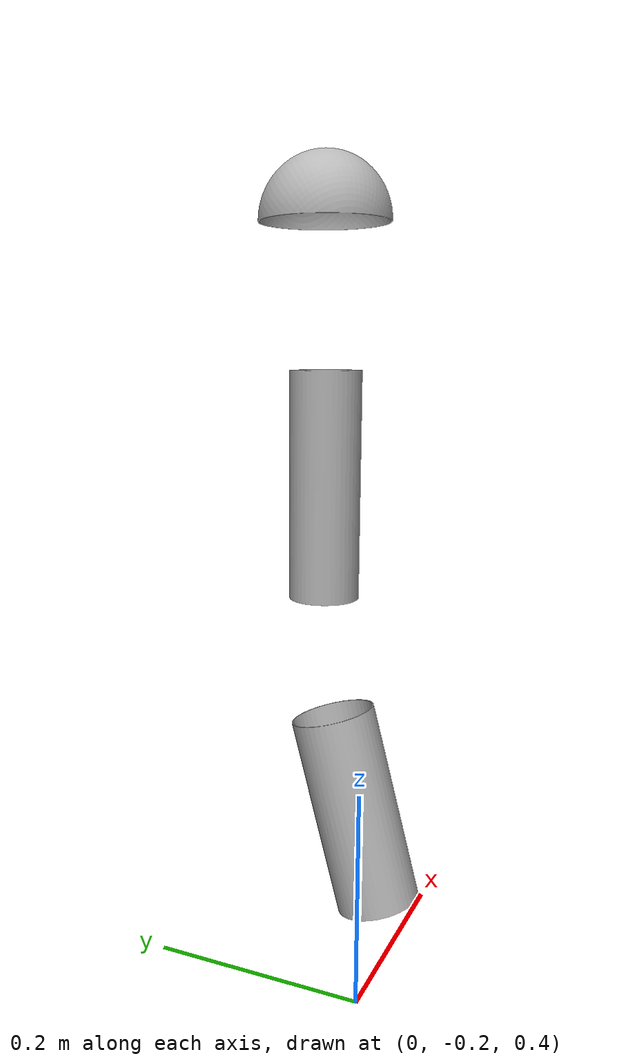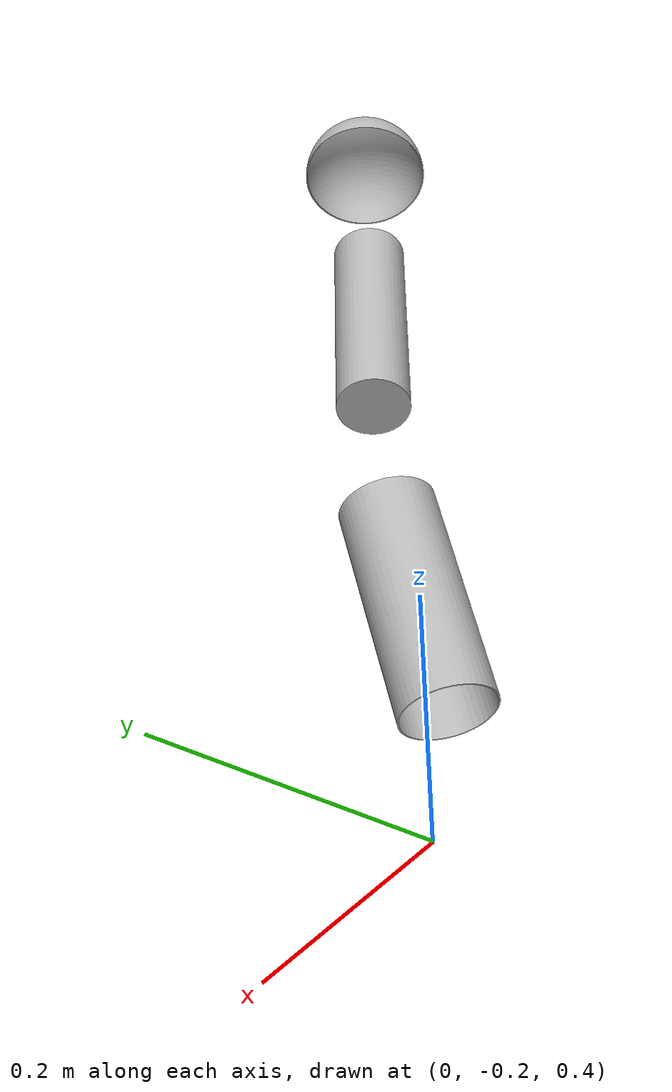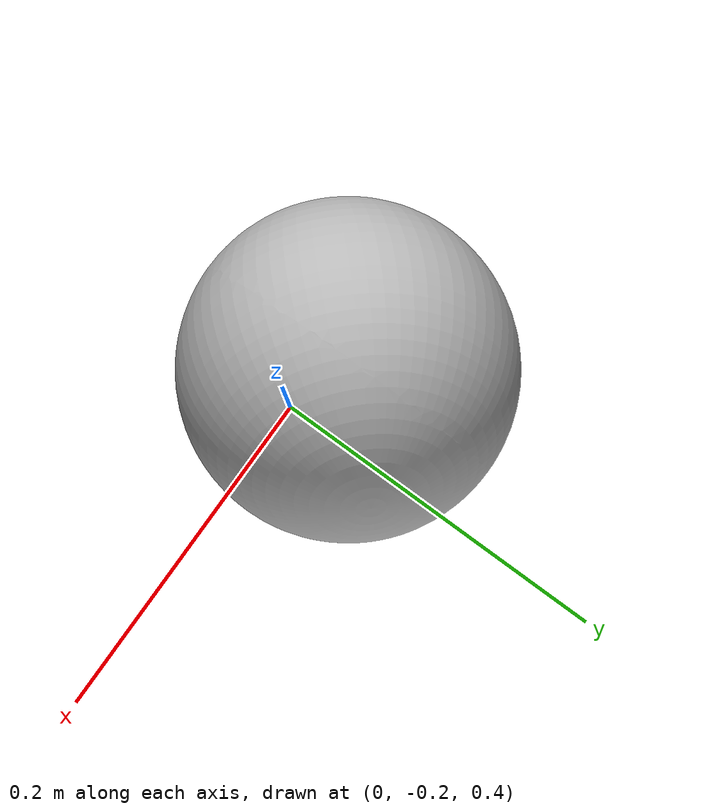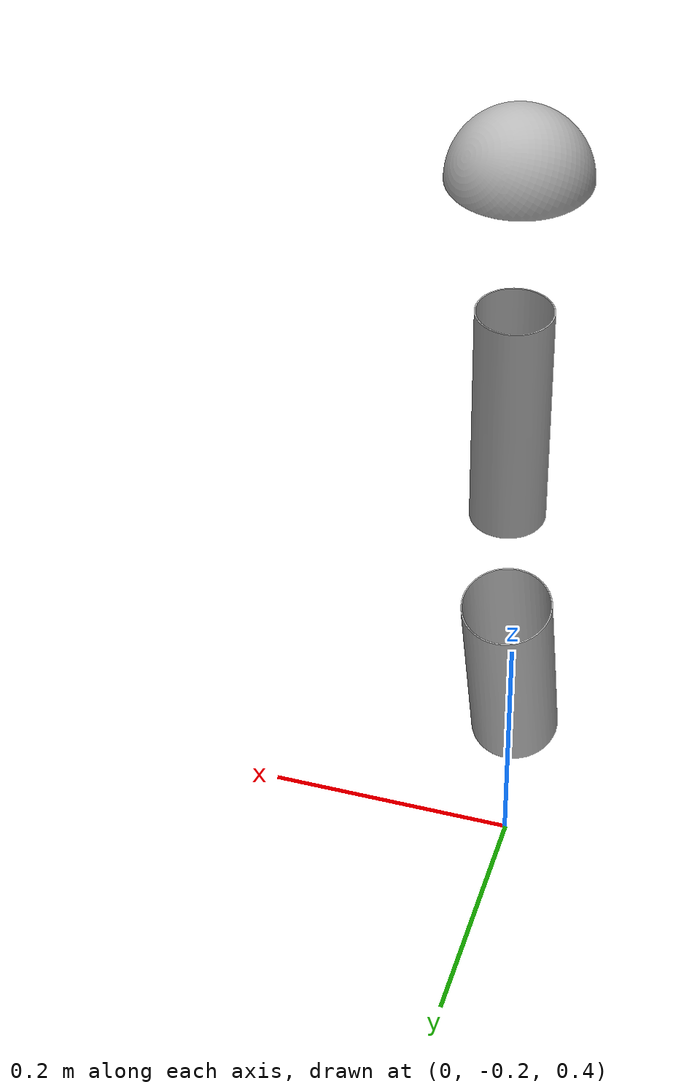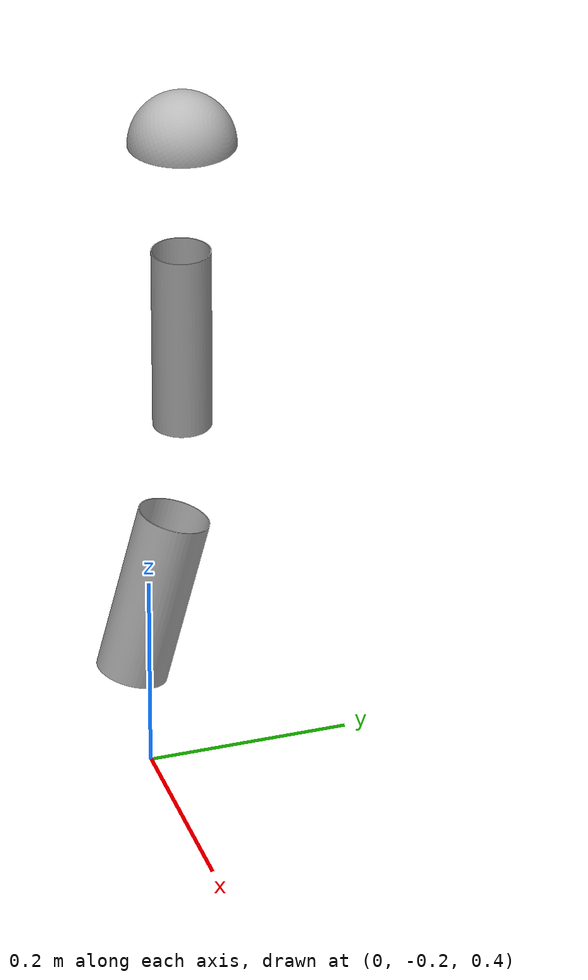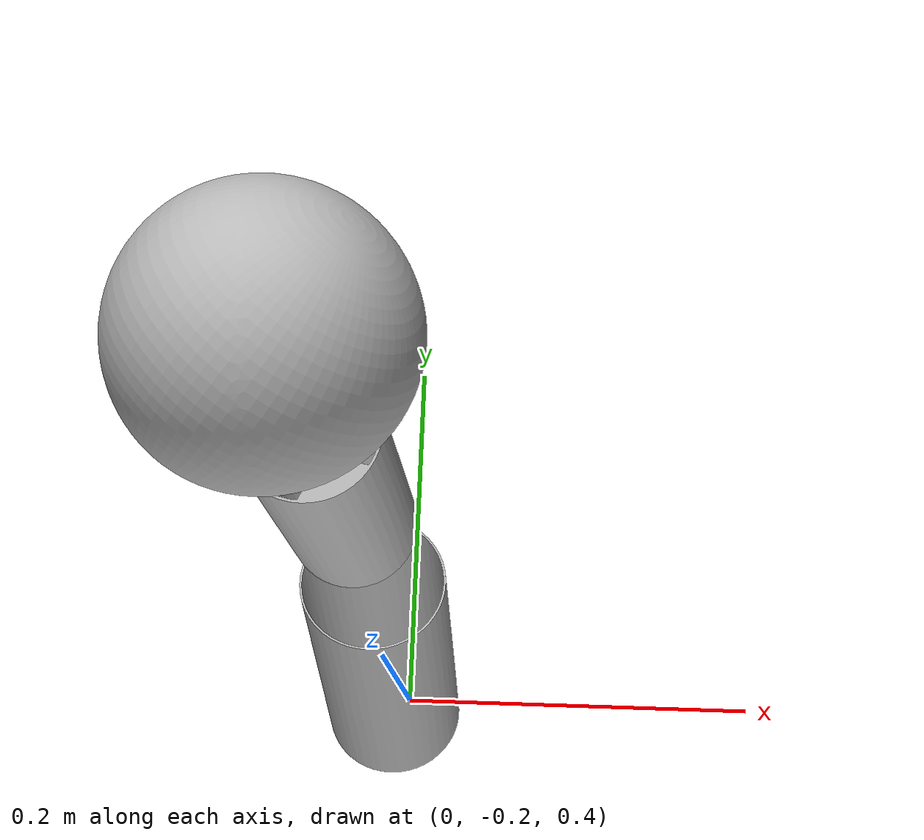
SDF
<?xml version="1.0" ?>
<sdf version="1.6">
	<model name="ExoSuitRaw">
		<link name="upperArm">
			<self_collide>false</self_collide>
			<pose frame="">-1.7643494710224107e-17 -0.16570084719370073 0.8534314721565275 0.0 -0.0 0.0</pose>
			<inertial>
				<pose frame="">0.0 0.0 0.0 0 0 0</pose>
				<mass>0.03539550761390621</mass>
				<inertia>
					<ixx>0.026872035392734427</ixx>
					<ixy>3.941291737419306e-18</ixy>
					<ixz>5.0054315680008845e-05</ixz>
					<iyy>0.02590018905422043</iyy>
					<iyz>-2.069455717901292e-17</iyz>
					<izz>0.0009976714073755158</izz>
				</inertia>
			</inertial>
			<collision name="upperArm_collision">
				<geometry>
					<mesh>
						<uri>model://ExoSuitRaw/meshes/CAD/upperArm.stl</uri>
						<scale>0.001 0.001 0.001</scale>
					</mesh>
				</geometry>
			</collision>
			<visual name="upperArm_visual">
				<geometry>
					<mesh>
						<uri>model://ExoSuitRaw/meshes/CAD/upperArm.stl</uri>
						<scale>0.001 0.001 0.001</scale>
					</mesh>
				</geometry>
			</visual>
		</link>
		<link name="lowerArm">
			<self_collide>false</self_collide>
			<pose frame="">-4.2988457588844647e-16 -0.19643803890239978 0.5886522339290996 0.0 -0.0 0.0</pose>
			<inertial>
				<pose frame="">0.0 0.0 0.0 0 0 0</pose>
				<mass>0.03906193473620447</mass>
				<inertia>
					<ixx>0.015160051673009383</ixx>
					<ixy>-3.97459842815806e-18</ixy>
					<ixz>4.4991700331169586e-05</ixz>
					<iyy>0.013647989308633632</iyy>
					<iyz>1.0480505352461477e-17</iyz>
					<izz>0.0015585655976792054</izz>
				</inertia>
			</inertial>
			<collision name="lowerArm_collision">
				<geometry>
					<mesh>
						<uri>model://ExoSuitRaw/meshes/CAD/lowerArm.stl</uri>
						<scale>0.001 0.001 0.001</scale>
					</mesh>
				</geometry>
			</collision>
			<visual name="lowerArm_visual">
				<geometry>
					<mesh>
						<uri>model://ExoSuitRaw/meshes/CAD/lowerArm.stl</uri>
						<scale>0.001 0.001 0.001</scale>
					</mesh>
				</geometry>
			</visual>
		</link>
		<link name="shoulder">
			<self_collide>false</self_collide>
			<pose frame="">2.1259319058061285e-17 -0.16398019855092769 1.081265420167624 0.0 -0.0 0.0</pose>
			<inertial>
				<pose frame="">0.0 0.0 0.0 0 0 0</pose>
				<mass>0.016319652301554036</mass>
				<inertia>
					<ixx>0.01953536710482905</ixx>
					<ixy>-8.881784197001253e-20</ixy>
					<ixz>2.8935742013549488e-05</ixz>
					<iyy>0.01909653972423413</iyy>
					<iyz>-1.332267629550188e-19</iyz>
					<izz>0.0004654900657675916</izz>
				</inertia>
			</inertial>
			<collision name="shoulder_collision">
				<geometry>
					<mesh>
						<uri>model://ExoSuitRaw/meshes/CAD/shoulder.stl</uri>
						<scale>0.001 0.001 0.001</scale>
					</mesh>
				</geometry>
			</collision>
			<visual name="shoulder_visual">
				<geometry>
					<mesh>
						<uri>model://ExoSuitRaw/meshes/CAD/shoulder.stl</uri>
						<scale>0.001 0.001 0.001</scale>
					</mesh>
				</geometry>
			</visual>
		</link>
	</model>
</sdf>
